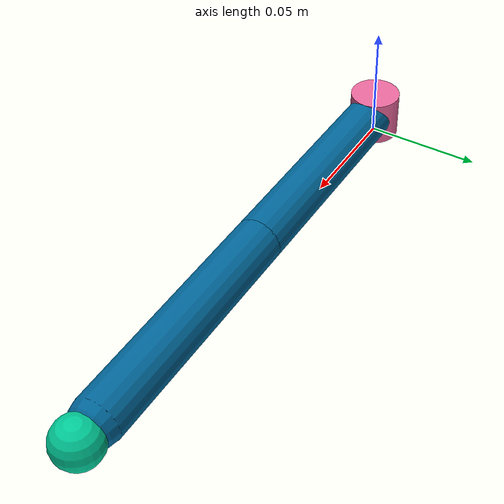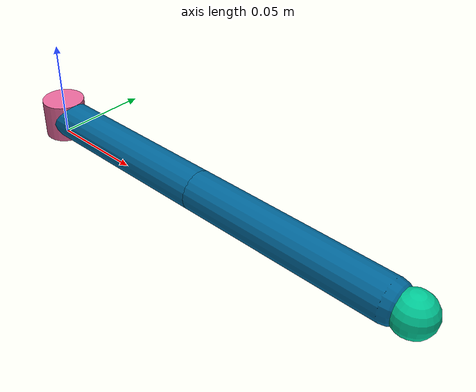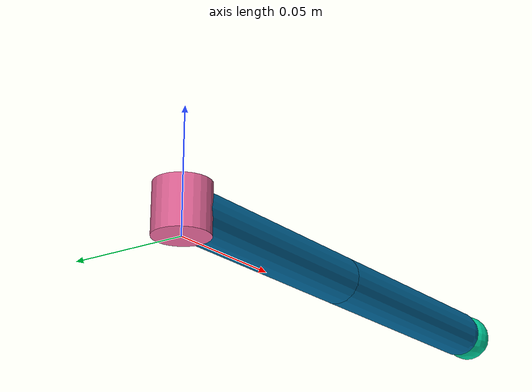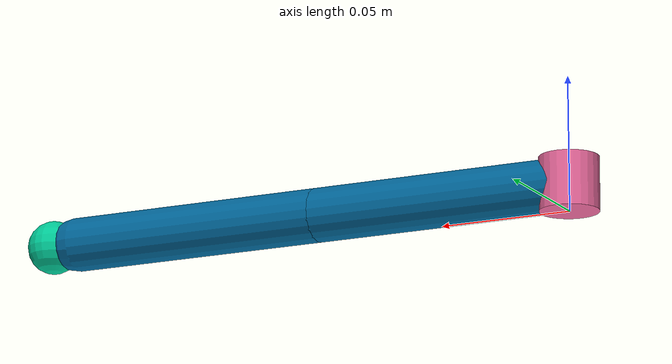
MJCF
<mujoco model="reacher">
	<compiler angle="radian" inertiafromgeom="true"/>
	<default>
		<joint armature="1" damping="1" limited="true"/>
		<geom contype="0" friction="1 0.1 0.1" rgba="0.7 0.7 0 1"/>
	</default>
	<option gravity="0 0 -9.81" integrator="RK4" timestep="0.01"/>
	<worldbody>
		<!-- Arm -->
		<geom conaffinity="0" contype="0" fromto="0 0 0 0 0 0.02" name="root" rgba="0.9 0.4 0.6 1" size=".011" type="cylinder"/>
		<body name="body0" pos="0 0 .01">
			<inertial pos="0 0 0" mass="5" diaginertia="1.66667 1.66667 1.66667"/>
			<geom fromto="0 0 0 0.1 0 0" name="link0" rgba="0.0 0.4 0.6 1" size=".01" type="capsule"/>
			<joint axis="0 0 1" limited="false" name="joint0" pos="0 0 0" range="-3.0 3.0" type="hinge"/>
			<body name="body1" pos="0.1 0 0">
				<inertial pos="0 0 0" mass="5" diaginertia="1.66667 1.66667 1.66667"/>
				<joint axis="0 0 1" limited="true" name="joint1" pos="0 0 0" range="-3.0 3.0" type="hinge"/>
				<geom fromto="0 0 0 0.1 0 0" name="link1" rgba="0.0 0.4 0.6 1" size=".01" type="capsule"/>
				<body name="fingertip" pos="0.11 0 0">
					<geom contype="0" name="fingertip" pos="0 0 0" rgba="0.0 0.8 0.6 1" size=".01" type="sphere"/>
				</body>
			</body>
		</body>
	</worldbody>
	<actuator>
		<motor ctrllimited="true" ctrlrange="-1.0 1.0" gear="200.0" joint="joint0"/>
		<motor ctrllimited="true" ctrlrange="-1.0 1.0" gear="200.0" joint="joint1"/>
	</actuator>
</mujoco>
